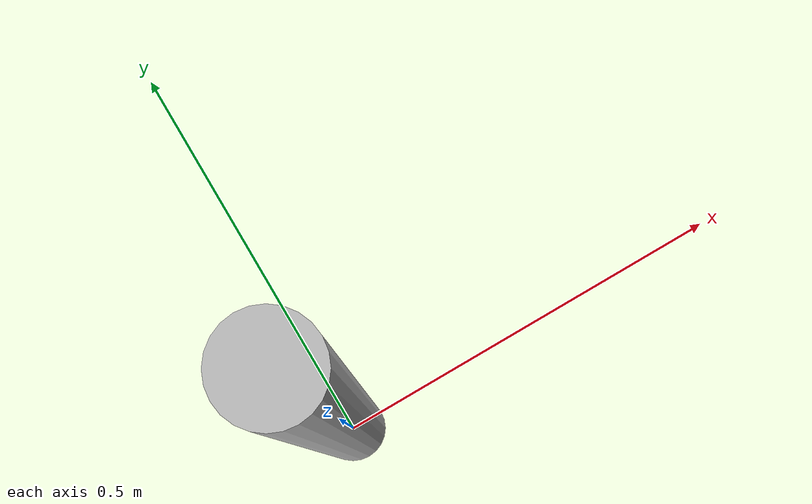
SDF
<?xml version='1.0'?>
<sdf version='1.4'>
  <model name="tree_trunk">
  <static>true</static>
    <link name="trunk">
      <pose>0 0 0.9 0 0 0</pose>

      <collision name="collision">
        <geometry>
          <cylinder>
              <radius>.04</radius> <length>1.8</length>
          </cylinder>
        </geometry>
      </collision>

      <visual name="visual">
        <geometry>
          <cylinder>
              <radius>.04</radius> <length>1.8</length>
          </cylinder>
        </geometry>
        <material>
		<script>
			<uri>model://tree_trunk/materials/scripts</uri>
			<uri>model://tree_trunk/materials/textures</uri>
			<name>Tree/Bark</name>
		</script>
        </material>
      </visual>

    <inertial>
      <pose>0 0 0 0 0 0</pose>
      <mass>20</mass>
      <inertia>
        <ixx>0.4</ixx>
        <ixy>0.0</ixy>
        <ixz>0.0</ixz>
        <iyy>0.4</iyy>
        <iyz>0.0</iyz>
        <izz>0.2</izz>
      </inertia>
    </inertial>

    </link>

  </model>
</sdf>
